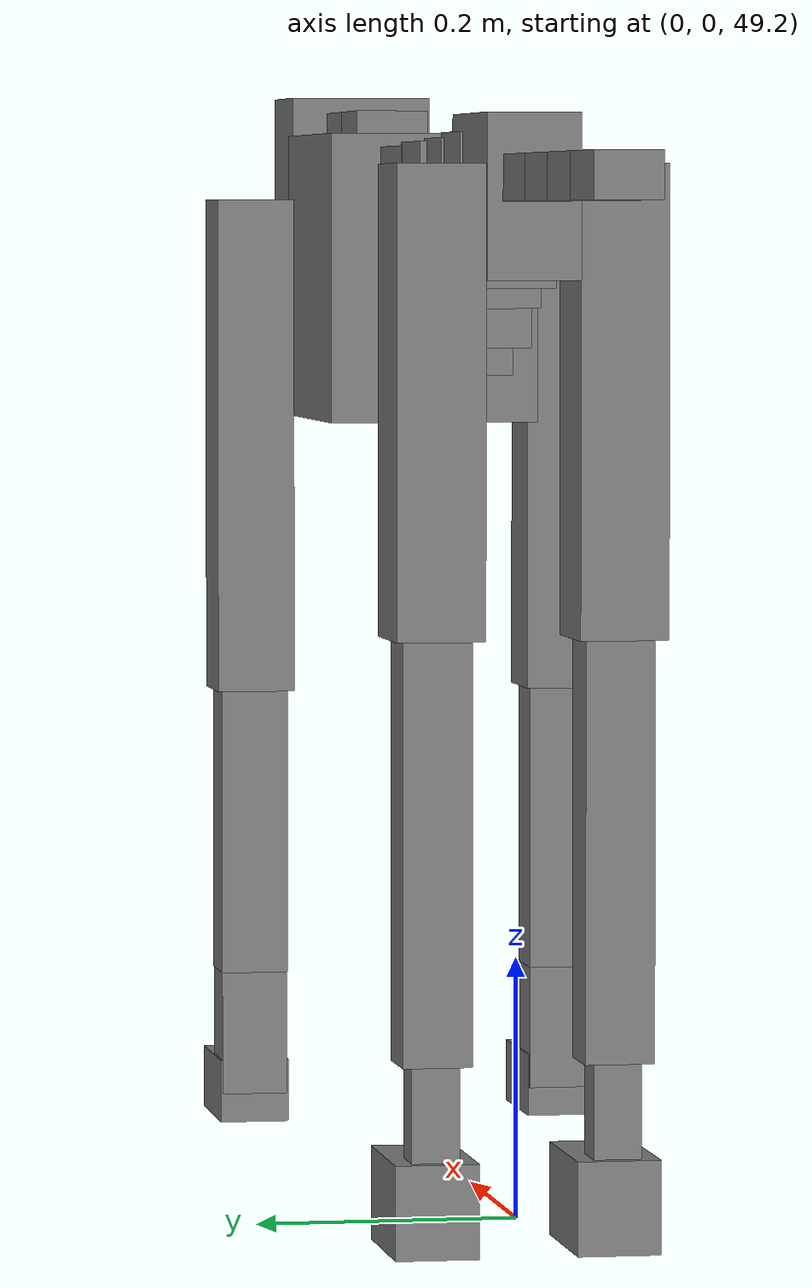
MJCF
<mujoco model="dog">

    <default>
        <joint armature="0.02" stiffness="1" damping="0.2" limited="true"/>
        <geom condim="3" friction="1 0.05 0.05" margin="0.01"/>
        <motor ctrllimited="true" ctrlrange="-1.0 1.0" forcelimited="true" gear="50"/>
    </default>

    <compiler inertiafromgeom="true" angle="radian"/>

    <option timestep="0.016" iterations="50" tolerance="1e-10" solver="Newton" jacobian="dense" cone="pyramidal"/>

    <size nconmax="20000" njmax="60000" nstack="5000000"/>
    <visual>
        <map force="0.1" zfar="30"/>
        <rgba haze="0.15 0.25 0.35 1"/>
        <quality shadowsize="2048"/>
        <global offwidth="800" offheight="800"/>
    </visual>

    <asset>
        <texture type="skybox" builtin="gradient" rgb1="0.3 0.5 0.7" rgb2="0 0 0" width="512" height="512"/>
        <texture name="texplane" type="2d" builtin="checker" rgb1=".2 .3 .4" rgb2=".1 0.15 0.2" width="512" height="512"
                 mark="cross" markrgb=".8 .8 .8"/>
        <texture name="texgeom" type="cube" builtin="flat" mark="cross" width="127" height="1278" rgb1="0.8 0.6 0.4"
                 rgb2="0.8 0.6 0.4" markrgb="1 1 1" random="0.01"/>

        <material name="matplane" reflectance="0.3" texture="texplane" texrepeat="1 1" texuniform="true"/>
        <material name="matgeom" texture="texgeom" texuniform="true" rgba="0.8 0.6 .4 1"/>
    </asset>

    <worldbody>
        <geom name="floor" pos="0 0 0" size="0 0 .25" type="plane" material="matplane" condim="3"/>

        <light directional="false" diffuse=".2 .2 .2" specular="0 0 0" pos="0 0 5" dir="0 0 -1" castshadow="false"/>
        <light mode="targetbodycom" target="torso" directional="false" diffuse=".8 .8 .8" specular="0.3 0.3 0.3"
               pos="0 0 4.0" dir="0 0 -1"/>

        <body name="root" pos="0 0 50">
            <freejoint name="root_1"/>
            <geom type="box" pos="0 0 -0.02" size="0.0774  0.0358  0.063" density="2030"/>

            <body name="spine1" pos="0.054 0 0">
                <joint name="spine1_y" axis="0 1 0" range="0 0.7" limited="true"/>
                <geom type="box" pos="0.02375 0 -0.03" size="0.04375  0.0375  0.05985" density="2030"/>

                <body name="spine2" pos="0.0612 0 0">
                    <joint name="spine2_y" axis="0 1 0" range="-0.15 0.15" limited="true"/>
                    <geom type="box" pos="0.03555  0  -0.04" size="0.04055  0.039  0.06615" density="2030"/>

                    <body name="spine3" pos="0.0730 0 0">
                        <joint name="spine3_y" axis="0 1 0" range="-0.15 0.15" limited="true"/>
                        <geom type="box" pos="0.03555  0  -0.057" size="0.04555  0.0445  0.081" density="2030"/>

                        <body name="spine4" pos="0.0780 0 0">
                            <joint name="spine4_y" axis="0 1 0" range="-0.15 0.15" limited="true"/>
                            <geom type="box" pos="0.05265  0  -0.07" size="0.05265  0.045  0.09135" density="2030"/>

                            <body name="torso" pos="0.1082 0 0">
                                <joint name="torso_y" axis="0 1 0" range="-0.15 0.15" limited="true"/>
                                <geom type="box" pos="0.11925  0  -0.085" size="0.11925  0.085  0.11745"
                                      density="2030"/>

                                <body name="neck1" pos="0.2160  0   0.0180">
                                    <joint name="neck1_y" axis="0 1 0" range="-1.2  -1" limited="true"/>
                                    <geom type="box" pos="0.0423  0  0" size="0.0423  0.03  0.036" density="2325"/>

                                    <body name="neck2" pos="0.0853  0  0">
                                        <joint name="neck2_y" axis="0 1 0" range="0.1  0" limited="true"/>
                                        <geom type="box" pos="0.0423  0  0" size="0.0423  0.03  0.036" density="2325"/>

                                        <body name="head" pos="0.0853  0  0">
                                            <joint name="head_y" axis="0 1 0" range="-0.3  -0.2" limited="true"/>
                                            <geom type="box" pos="0.0531  0  -0.055" size="0.0531  0.06  0.1044"
                                                  density="4030"/>

                                        </body>
                                    </body>
                                </body>

                                <body name="front_shoulder" pos="0.156  0   -0.0480">
                                    <joint name="front_shoulder_y" axis="0 1 0" range="-1 1.5" limited="true"/>
                                    <geom type="box" pos="0 0.13 -0.1768" size="0.0372  0.0318  0.2035" density="1158"/>
                                    <geom type="box" pos="0 -0.13 -0.1768" size="0.0372  0.0318  0.2035"
                                          density="1158"/>

                                    <body name="front_elbow" pos="0  0  -0.3537">
                                        <joint name="front_elbow_y" axis="0 1 0" range="-2 0" limited="true"/>
                                        <geom type="box" pos="0 0.13 -0.1310" size="0.0268  0.0274  0.1310"
                                              density="1081"/>
                                        <geom type="box" pos="0 -0.13 -0.1310" size="0.0268  0.0274  0.1310"
                                              density="1081"/>

                                        <body name="front_wrist" pos="0  0  -0.2621">
                                            <joint name="front_wrist_y" axis="0 1 0" range="-0.2 0" limited="true"/>
                                            <geom type="box" pos="0 0.13 -0.0443" size="0.0244  0.0271  0.0574"
                                                  density="1664"/>
                                            <geom type="box" pos="0 -0.13 -0.0443" size="0.0244  0.0271  0.0574"
                                                  density="1664"/>

                                            <body name="front_finger_end" pos="0  0  -0.0885">
                                                <joint name="front_finger_y" axis="0 1 0" range="-0.4 1"
                                                       limited="true"/>
                                                <geom type="box" pos="0.0284  0.13  -0.0109"
                                                      size="0.0521  0.0284  0.0259" density="1515"/>
                                                <geom type="box" pos="0.0284  -0.13  -0.0109"
                                                      size="0.0521  0.0284  0.0259" density="1515"/>

                                            </body>

                                        </body>
                                    </body>
                                </body>

                            </body>
                        </body>
                    </body>
                </body>
            </body>

            <body name="back_hip" pos="-0.03 0 -0.018">
                <joint name="back_hip_y" axis="0 1 0" range="-1.5 0.3" limited="true"/>
                <geom type="box" pos="0 0.07 -0.1565" size="0.0432  0.0339  0.1793" density="1154"/>
                <geom type="box" pos="0 -0.07 -0.1565" size="0.0432  0.0339  0.1793" density="1154"/>

                <body name="back_knee" pos="0  0  -0.3129">
                    <joint name="back_knee_y" axis="0 1 0" range="0 2.8" limited="true"/>
                    <geom type="box" pos="0 0.07 -0.1650" size="0.0271  0.0267  0.1805" density="1227"/>
                    <geom type="box" pos="0 -0.07 -0.1650" size="0.0271  0.0267  0.1805" density="1227"/>

                    <body name="back_ankle" pos="0  0  -0.3299">
                        <joint name="back_ankle_y" axis="0 1 0" range="-2.2 0" limited="true"/>
                        <geom type="box" pos="0 0.07 -0.0521" size="0.0185  0.0185  0.0633" density="1284"/>
                        <geom type="box" pos="0 -0.07 -0.0521" size="0.0185  0.0185  0.0633" density="1284"/>

                        <body name="back_toe_end" pos="0  0  -0.1042">
                            <joint name="back_toe_y" axis="0 1 0" range="-0.4 1" limited="true"/>
                            <geom type="box" pos="0.0322  0.07  -0.0213" size="0.0590  0.0322  0.0363" density="1515"/>
                            <geom type="box" pos="0.0322  -0.07  -0.0213" size="0.0590  0.0322  0.0363" density="1515"/>

                        </body>
                    </body>
                </body>
            </body>

            <body name="tail1" pos="-0.074 0 -0.006">
                <joint name="tail1_y" axis="0 1 0" range="-0.2 0.2" limited="true"/>
                <geom type="box" pos="-0.0536  0  0" size="0.045  0.025  0.0175" density="1587"/>

                <body name="tail2" pos="-0.09 0 0">
                    <joint name="tail2_y" axis="0 1 0" range="-0.2 0.2" limited="true"/>
                    <geom type="box" pos="-0.0536  0  0" size="0.045  0.025  0.0175" density="1587"/>

                    <body name="tail3" pos="-0.09 0 0">
                        <joint name="tail3_y" axis="0 1 0" range="-0.2 0.2" limited="true"/>
                        <geom type="box" pos="-0.0536  0  0" size="0.045  0.025  0.0175" density="1587"/>

                        <body name="tail4" pos="-0.09 0 0">
                            <joint name="tail4_y" axis="0 1 0" range="-0.2 0.2" limited="true"/>
                            <geom type="box" pos="-0.0536  0  0" size="0.045  0.025  0.0175" density="1587"/>

                        </body>
                    </body>
                </body>
            </body>
        </body>
    </worldbody>

    <actuator>
        <motor joint="spine1_y" forcerange="-150 150     "/>
        <motor joint="spine2_y" forcerange="-150 150     "/>
        <motor joint="spine3_y" forcerange="-150 150     "/>
        <motor joint="spine4_y" forcerange="-150 150     "/>
        <motor joint="torso_y" forcerange="-150 150     "/>
        <motor joint="neck1_y" forcerange="-100 100       "/>
        <motor joint="neck2_y" forcerange="-100 100       "/>
        <motor joint="head_y" forcerange="-150 150       "/>
        <motor joint="front_shoulder_y" forcerange="-122.62 189.60"/>
        <motor joint="front_elbow_y" forcerange="-139.45 160.08"/>
        <motor joint="front_wrist_y" forcerange="-101.29 115.67"/>
        <motor joint="front_finger_y" forcerange="-60.54 50.98"/>
        <motor joint="back_hip_y" forcerange="-389.77 262.43"/>
        <motor joint="back_knee_y" forcerange="-246.83 341.75"/>
        <motor joint="back_angle_y" forcerange="-64.00 132.64"/>
        <motor joint="back_toe_y" forcerange="-67.65 109.80"/>
        <motor joint="tail1_y" forcerange="-50 50     "/>
        <motor joint="tail2_y" forcerange="-50 50     "/>
        <motor joint="tail3_y" forcerange="-50 50     "/>
        <motor joint="tail4_y" forcerange="-50 50     "/>
    </actuator>
</mujoco>
